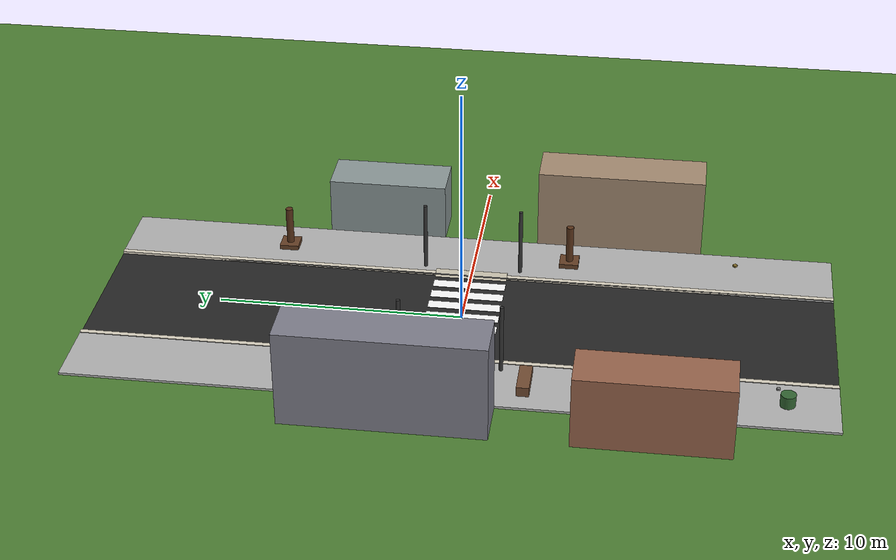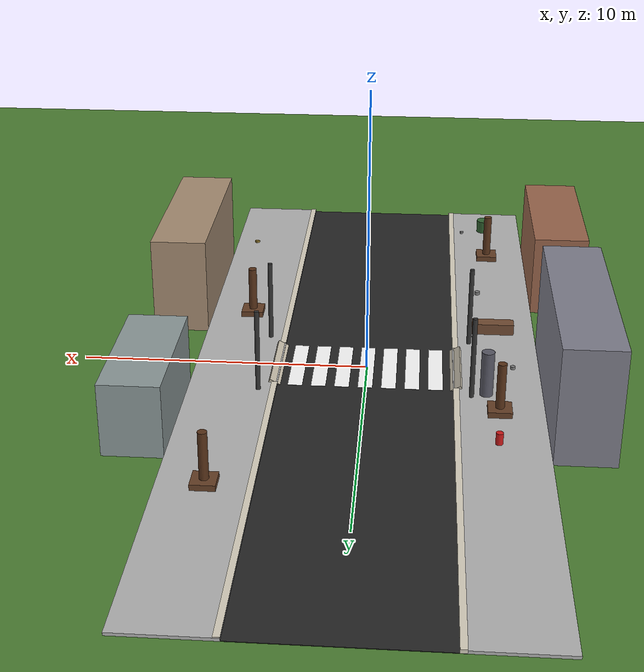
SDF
<?xml version="1.0" ?>
<sdf version="1.9">
  <world name="level1_basic">
    <physics name="1ms" type="ignore">
      <max_step_size>0.001</max_step_size>
      <real_time_factor>1.0</real_time_factor>
    </physics>
    <plugin filename="gz-sim-physics-system" name="gz::sim::systems::Physics"/>
    <plugin filename="gz-sim-scene-broadcaster-system" name="gz::sim::systems::SceneBroadcaster"/>
    <plugin filename="gz-sim-sensors-system" name="gz::sim::systems::Sensors">
      <render_engine>ogre2</render_engine>
    </plugin>
    <plugin filename="gz-sim-user-commands-system" name="gz::sim::systems::UserCommands"/>

    <light type="directional" name="sun">
      <cast_shadows>true</cast_shadows>
      <pose>0 0 10 0 0 0</pose>
      <diffuse>0.8 0.8 0.8 1</diffuse>
      <specular>0.2 0.2 0.2 1</specular>
      <attenuation><range>1000</range><constant>0.9</constant><linear>0.01</linear><quadratic>0.001</quadratic></attenuation>
      <direction>-0.5 0.1 -0.9</direction>
    </light>

    <!-- Level 1: 기본 인도 - 장애물 거의 없음, 평탄한 지형 -->

    <model name="ground_plane_visual">
      <static>true</static>
      <pose>0 0 -0.01 0 0 0</pose>
      <link name="link">
        <collision name="collision"><geometry><box><size>100 100 0.02</size></box></geometry></collision>
        <visual name="visual"><geometry><box><size>100 100 0.02</size></box></geometry>
          <material><ambient>0.3 0.5 0.2 1</ambient><diffuse>0.3 0.5 0.2 1</diffuse></material></visual>
      </link>
    </model>

    <model name="road">
      <static>true</static>
      <pose>0 0 0.01 0 0 0</pose>
      <link name="link">
        <collision name="collision"><geometry><box><size>6.0 30.0 0.02</size></box></geometry></collision>
        <visual name="visual"><geometry><box><size>6.0 30.0 0.02</size></box></geometry>
          <material><ambient>0.15 0.15 0.15 1</ambient><diffuse>0.15 0.15 0.15 1</diffuse></material></visual>
      </link>
    </model>

    <model name="sidewalk_left">
      <static>true</static>
      <pose>-4.5 0 0.05 0 0 0</pose>
      <link name="link">
        <collision name="collision"><geometry><box><size>3.0 30.0 0.1</size></box></geometry></collision>
        <visual name="visual"><geometry><box><size>3.0 30.0 0.1</size></box></geometry>
          <material><ambient>0.7 0.7 0.7 1</ambient><diffuse>0.7 0.7 0.7 1</diffuse></material></visual>
      </link>
    </model>

    <model name="sidewalk_right">
      <static>true</static>
      <pose>4.5 0 0.05 0 0 0</pose>
      <link name="link">
        <collision name="collision"><geometry><box><size>3.0 30.0 0.1</size></box></geometry></collision>
        <visual name="visual"><geometry><box><size>3.0 30.0 0.1</size></box></geometry>
          <material><ambient>0.7 0.7 0.7 1</ambient><diffuse>0.7 0.7 0.7 1</diffuse></material></visual>
      </link>
    </model>

    <model name="crosswalk_1">
      <static>true</static>
      <pose>-2.4 0 0.02 0 0 0</pose>
      <link name="link">
        <collision name="collision"><geometry><box><size>0.5 3 0.01</size></box></geometry></collision>
        <visual name="visual"><geometry><box><size>0.5 3 0.01</size></box></geometry>
          <material><ambient>1 1 1 1</ambient><diffuse>1 1 1 1</diffuse></material></visual>
      </link>
    </model>

    <model name="crosswalk_2">
      <static>true</static>
      <pose>-1.6 0 0.02 0 0 0</pose>
      <link name="link">
        <collision name="collision"><geometry><box><size>0.5 3 0.01</size></box></geometry></collision>
        <visual name="visual"><geometry><box><size>0.5 3 0.01</size></box></geometry>
          <material><ambient>1 1 1 1</ambient><diffuse>1 1 1 1</diffuse></material></visual>
      </link>
    </model>

    <model name="crosswalk_3">
      <static>true</static>
      <pose>-0.8 0 0.02 0 0 0</pose>
      <link name="link">
        <collision name="collision"><geometry><box><size>0.5 3 0.01</size></box></geometry></collision>
        <visual name="visual"><geometry><box><size>0.5 3 0.01</size></box></geometry>
          <material><ambient>1 1 1 1</ambient><diffuse>1 1 1 1</diffuse></material></visual>
      </link>
    </model>

    <model name="crosswalk_4">
      <static>true</static>
      <pose>0.0 0 0.02 0 0 0</pose>
      <link name="link">
        <collision name="collision"><geometry><box><size>0.5 3 0.01</size></box></geometry></collision>
        <visual name="visual"><geometry><box><size>0.5 3 0.01</size></box></geometry>
          <material><ambient>1 1 1 1</ambient><diffuse>1 1 1 1</diffuse></material></visual>
      </link>
    </model>

    <model name="crosswalk_5">
      <static>true</static>
      <pose>0.8 0 0.02 0 0 0</pose>
      <link name="link">
        <collision name="collision"><geometry><box><size>0.5 3 0.01</size></box></geometry></collision>
        <visual name="visual"><geometry><box><size>0.5 3 0.01</size></box></geometry>
          <material><ambient>1 1 1 1</ambient><diffuse>1 1 1 1</diffuse></material></visual>
      </link>
    </model>

    <model name="crosswalk_6">
      <static>true</static>
      <pose>1.6 0 0.02 0 0 0</pose>
      <link name="link">
        <collision name="collision"><geometry><box><size>0.5 3 0.01</size></box></geometry></collision>
        <visual name="visual"><geometry><box><size>0.5 3 0.01</size></box></geometry>
          <material><ambient>1 1 1 1</ambient><diffuse>1 1 1 1</diffuse></material></visual>
      </link>
    </model>

    <model name="crosswalk_7">
      <static>true</static>
      <pose>2.4 0 0.02 0 0 0</pose>
      <link name="link">
        <collision name="collision"><geometry><box><size>0.5 3 0.01</size></box></geometry></collision>
        <visual name="visual"><geometry><box><size>0.5 3 0.01</size></box></geometry>
          <material><ambient>1 1 1 1</ambient><diffuse>1 1 1 1</diffuse></material></visual>
      </link>
    </model>

    <model name="curb_left_south">
      <static>true</static>
      <pose>-3.1 -8.25 0.06999999999999999 0 0 0</pose>
      <link name="link">
        <collision name="collision"><geometry><box><size>0.2 13.5 0.12</size></box></geometry></collision>
        <visual name="visual"><geometry><box><size>0.2 13.5 0.12</size></box></geometry>
          <material><ambient>0.85 0.82 0.75 1</ambient><diffuse>0.85 0.82 0.75 1</diffuse></material></visual>
      </link>
    </model>

    <model name="curb_left_north">
      <static>true</static>
      <pose>-3.1 8.25 0.06999999999999999 0 0 0</pose>
      <link name="link">
        <collision name="collision"><geometry><box><size>0.2 13.5 0.12</size></box></geometry></collision>
        <visual name="visual"><geometry><box><size>0.2 13.5 0.12</size></box></geometry>
          <material><ambient>0.85 0.82 0.75 1</ambient><diffuse>0.85 0.82 0.75 1</diffuse></material></visual>
      </link>
    </model>

    <model name="curb_right_south">
      <static>true</static>
      <pose>3.1 -8.25 0.06999999999999999 0 0 0</pose>
      <link name="link">
        <collision name="collision"><geometry><box><size>0.2 13.5 0.12</size></box></geometry></collision>
        <visual name="visual"><geometry><box><size>0.2 13.5 0.12</size></box></geometry>
          <material><ambient>0.85 0.82 0.75 1</ambient><diffuse>0.85 0.82 0.75 1</diffuse></material></visual>
      </link>
    </model>

    <model name="curb_right_north">
      <static>true</static>
      <pose>3.1 8.25 0.06999999999999999 0 0 0</pose>
      <link name="link">
        <collision name="collision"><geometry><box><size>0.2 13.5 0.12</size></box></geometry></collision>
        <visual name="visual"><geometry><box><size>0.2 13.5 0.12</size></box></geometry>
          <material><ambient>0.85 0.82 0.75 1</ambient><diffuse>0.85 0.82 0.75 1</diffuse></material></visual>
      </link>
    </model>

    <model name="curb_ramp_left">
      <static>true</static>
      <pose>-3.1 0 0.06 0 0.5 0</pose>
      <link name="link">
        <collision name="collision"><geometry><box><size>0.4 3 0.12</size></box></geometry></collision>
        <visual name="visual"><geometry><box><size>0.4 3 0.12</size></box></geometry>
          <material><ambient>0.75 0.72 0.65 1</ambient><diffuse>0.75 0.72 0.65 1</diffuse></material></visual>
      </link>
    </model>

    <model name="curb_ramp_right">
      <static>true</static>
      <pose>3.1 0 0.06 0 -0.5 0</pose>
      <link name="link">
        <collision name="collision"><geometry><box><size>0.4 3 0.12</size></box></geometry></collision>
        <visual name="visual"><geometry><box><size>0.4 3 0.12</size></box></geometry>
          <material><ambient>0.75 0.72 0.65 1</ambient><diffuse>0.75 0.72 0.65 1</diffuse></material></visual>
      </link>
    </model>

    <model name="building_left_1">
      <static>true</static>
      <pose>-7.0 -8 1.5 0 0 0</pose>
      <link name="link">
        <collision name="collision"><geometry><box><size>2 6 3</size></box></geometry></collision>
        <visual name="visual"><geometry><box><size>2 6 3</size></box></geometry>
          <material><ambient>0.6 0.4 0.3 1</ambient><diffuse>0.6 0.4 0.3 1</diffuse></material></visual>
      </link>
    </model>

    <model name="building_left_2">
      <static>true</static>
      <pose>-7.0 2 2 0 0 0</pose>
      <link name="link">
        <collision name="collision"><geometry><box><size>2 8 4</size></box></geometry></collision>
        <visual name="visual"><geometry><box><size>2 8 4</size></box></geometry>
          <material><ambient>0.5 0.5 0.55 1</ambient><diffuse>0.5 0.5 0.55 1</diffuse></material></visual>
      </link>
    </model>

    <model name="building_right_1">
      <static>true</static>
      <pose>7.0 -6 1.75 0 0 0</pose>
      <link name="link">
        <collision name="collision"><geometry><box><size>2 7 3.5</size></box></geometry></collision>
        <visual name="visual"><geometry><box><size>2 7 3.5</size></box></geometry>
          <material><ambient>0.65 0.55 0.45 1</ambient><diffuse>0.65 0.55 0.45 1</diffuse></material></visual>
      </link>
    </model>

    <model name="building_right_2">
      <static>true</static>
      <pose>7.0 4 1.25 0 0 0</pose>
      <link name="link">
        <collision name="collision"><geometry><box><size>2 5 2.5</size></box></geometry></collision>
        <visual name="visual"><geometry><box><size>2 5 2.5</size></box></geometry>
          <material><ambient>0.55 0.6 0.6 1</ambient><diffuse>0.55 0.6 0.6 1</diffuse></material></visual>
      </link>
    </model>

    <model name="tree_1">
      <static>true</static>
      <pose>-4.5 -10 0.15 0 0 0</pose>
      <link name="link">
        <collision name="collision"><geometry><box><size>0.8 0.8 0.3</size></box></geometry></collision>
        <visual name="visual"><geometry><box><size>0.8 0.8 0.3</size></box></geometry>
          <material><ambient>0.4 0.25 0.15 1</ambient><diffuse>0.4 0.25 0.15 1</diffuse></material></visual>
      </link>
    </model>

    <model name="tree_1_trunk">
      <static>true</static>
      <pose>-4.5 -10 1.1 0 0 0</pose>
      <link name="link">
        <collision name="collision"><geometry><cylinder><radius>0.15</radius><length>1.6</length></cylinder></geometry></collision>
        <visual name="visual"><geometry><cylinder><radius>0.15</radius><length>1.6</length></cylinder></geometry>
          <material><ambient>0.35 0.2 0.1 1</ambient><diffuse>0.35 0.2 0.1 1</diffuse></material></visual>
      </link>
    </model>

    <model name="tree_2">
      <static>true</static>
      <pose>4.5 -4 0.15 0 0 0</pose>
      <link name="link">
        <collision name="collision"><geometry><box><size>0.8 0.8 0.3</size></box></geometry></collision>
        <visual name="visual"><geometry><box><size>0.8 0.8 0.3</size></box></geometry>
          <material><ambient>0.4 0.25 0.15 1</ambient><diffuse>0.4 0.25 0.15 1</diffuse></material></visual>
      </link>
    </model>

    <model name="tree_2_trunk">
      <static>true</static>
      <pose>4.5 -4 1.1 0 0 0</pose>
      <link name="link">
        <collision name="collision"><geometry><cylinder><radius>0.15</radius><length>1.6</length></cylinder></geometry></collision>
        <visual name="visual"><geometry><cylinder><radius>0.15</radius><length>1.6</length></cylinder></geometry>
          <material><ambient>0.35 0.2 0.1 1</ambient><diffuse>0.35 0.2 0.1 1</diffuse></material></visual>
      </link>
    </model>

    <model name="tree_3">
      <static>true</static>
      <pose>-4.5 3 0.15 0 0 0</pose>
      <link name="link">
        <collision name="collision"><geometry><box><size>0.8 0.8 0.3</size></box></geometry></collision>
        <visual name="visual"><geometry><box><size>0.8 0.8 0.3</size></box></geometry>
          <material><ambient>0.4 0.25 0.15 1</ambient><diffuse>0.4 0.25 0.15 1</diffuse></material></visual>
      </link>
    </model>

    <model name="tree_3_trunk">
      <static>true</static>
      <pose>-4.5 3 1.1 0 0 0</pose>
      <link name="link">
        <collision name="collision"><geometry><cylinder><radius>0.15</radius><length>1.6</length></cylinder></geometry></collision>
        <visual name="visual"><geometry><cylinder><radius>0.15</radius><length>1.6</length></cylinder></geometry>
          <material><ambient>0.35 0.2 0.1 1</ambient><diffuse>0.35 0.2 0.1 1</diffuse></material></visual>
      </link>
    </model>

    <model name="tree_4">
      <static>true</static>
      <pose>4.5 8 0.15 0 0 0</pose>
      <link name="link">
        <collision name="collision"><geometry><box><size>0.8 0.8 0.3</size></box></geometry></collision>
        <visual name="visual"><geometry><box><size>0.8 0.8 0.3</size></box></geometry>
          <material><ambient>0.4 0.25 0.15 1</ambient><diffuse>0.4 0.25 0.15 1</diffuse></material></visual>
      </link>
    </model>

    <model name="tree_4_trunk">
      <static>true</static>
      <pose>4.5 8 1.1 0 0 0</pose>
      <link name="link">
        <collision name="collision"><geometry><cylinder><radius>0.15</radius><length>1.6</length></cylinder></geometry></collision>
        <visual name="visual"><geometry><cylinder><radius>0.15</radius><length>1.6</length></cylinder></geometry>
          <material><ambient>0.35 0.2 0.1 1</ambient><diffuse>0.35 0.2 0.1 1</diffuse></material></visual>
      </link>
    </model>

    <model name="bench_1">
      <static>true</static>
      <pose>-4.5 -3 0.25 0 0 0</pose>
      <link name="link">
        <collision name="collision"><geometry><box><size>1.5 0.5 0.5</size></box></geometry></collision>
        <visual name="visual"><geometry><box><size>1.5 0.5 0.5</size></box></geometry>
          <material><ambient>0.45 0.3 0.2 1</ambient><diffuse>0.45 0.3 0.2 1</diffuse></material></visual>
      </link>
    </model>

    <model name="trash_bin_1">
      <static>true</static>
      <pose>-4.5 -13 0.3 0 0 0</pose>
      <link name="link">
        <collision name="collision"><geometry><cylinder><radius>0.3</radius><length>0.6</length></cylinder></geometry></collision>
        <visual name="visual"><geometry><cylinder><radius>0.3</radius><length>0.6</length></cylinder></geometry>
          <material><ambient>0.2 0.4 0.2 1</ambient><diffuse>0.2 0.4 0.2 1</diffuse></material></visual>
      </link>
    </model>

    <model name="hydrant_1">
      <static>true</static>
      <pose>-4.4 5 0.25 0 0 0</pose>
      <link name="link">
        <collision name="collision"><geometry><cylinder><radius>0.12</radius><length>0.5</length></cylinder></geometry></collision>
        <visual name="visual"><geometry><cylinder><radius>0.12</radius><length>0.5</length></cylinder></geometry>
          <material><ambient>0.8 0.1 0.1 1</ambient><diffuse>0.8 0.1 0.1 1</diffuse></material></visual>
      </link>
    </model>

    <model name="traffic_light_1">
      <static>true</static>
      <pose>-3.6 -2 1.5 0 0 0</pose>
      <link name="link">
        <collision name="collision"><geometry><cylinder><radius>0.08</radius><length>3</length></cylinder></geometry></collision>
        <visual name="visual"><geometry><cylinder><radius>0.08</radius><length>3</length></cylinder></geometry>
          <material><ambient>0.2 0.2 0.2 1</ambient><diffuse>0.2 0.2 0.2 1</diffuse></material></visual>
      </link>
    </model>

    <model name="traffic_light_2">
      <static>true</static>
      <pose>3.6 2 1.5 0 0 0</pose>
      <link name="link">
        <collision name="collision"><geometry><cylinder><radius>0.08</radius><length>3</length></cylinder></geometry></collision>
        <visual name="visual"><geometry><cylinder><radius>0.08</radius><length>3</length></cylinder></geometry>
          <material><ambient>0.2 0.2 0.2 1</ambient><diffuse>0.2 0.2 0.2 1</diffuse></material></visual>
      </link>
    </model>

    <model name="traffic_light_3">
      <static>true</static>
      <pose>-3.6 2 1.5 0 0 0</pose>
      <link name="link">
        <collision name="collision"><geometry><cylinder><radius>0.08</radius><length>3</length></cylinder></geometry></collision>
        <visual name="visual"><geometry><cylinder><radius>0.08</radius><length>3</length></cylinder></geometry>
          <material><ambient>0.2 0.2 0.2 1</ambient><diffuse>0.2 0.2 0.2 1</diffuse></material></visual>
      </link>
    </model>

    <model name="traffic_light_4">
      <static>true</static>
      <pose>3.6 -2 1.5 0 0 0</pose>
      <link name="link">
        <collision name="collision"><geometry><cylinder><radius>0.08</radius><length>3</length></cylinder></geometry></collision>
        <visual name="visual"><geometry><cylinder><radius>0.08</radius><length>3</length></cylinder></geometry>
          <material><ambient>0.2 0.2 0.2 1</ambient><diffuse>0.2 0.2 0.2 1</diffuse></material></visual>
      </link>
    </model>

    <model name="pedestrian_static_0">
      <static>true</static>
      <pose>-4.10 1.80 0.85 0 0 0</pose>
      <link name="link">
        <collision name="collision"><geometry><cylinder><radius>0.22</radius><length>1.7</length></cylinder></geometry></collision>
        <visual name="visual"><geometry><cylinder><radius>0.22</radius><length>1.7</length></cylinder></geometry>
          <material><ambient>0.35 0.35 0.4 1</ambient><diffuse>0.35 0.35 0.4 1</diffuse></material></visual>
      </link>
    </model>

    <model name="obstacle_0">
      <static>true</static>
      <pose>-5.09 -0.12 0.11 0 0 0</pose>
      <link name="link">
        <collision name="collision"><geometry><cylinder><radius>0.08623727661971846</radius><length>0.17247455323943692</length></cylinder></geometry></collision>
        <visual name="visual"><geometry><cylinder><radius>0.08623727661971846</radius><length>0.17247455323943692</length></cylinder></geometry>
          <material><ambient>0.5 0.5 0.5 1</ambient><diffuse>0.5 0.5 0.5 1</diffuse></material></visual>
      </link>
    </model>

    <model name="obstacle_1">
      <static>true</static>
      <pose>5.19 -10.97 0.10 0 0 0.68</pose>
      <link name="link">
        <collision name="collision"><geometry><box><size>0.15 0.15 0.15</size></box></geometry></collision>
        <visual name="visual"><geometry><box><size>0.15 0.15 0.15</size></box></geometry>
          <material><ambient>0.6 0.5 0.2 1</ambient><diffuse>0.6 0.5 0.2 1</diffuse></material></visual>
      </link>
    </model>

    <model name="obstacle_2">
      <static>true</static>
      <pose>-4.03 -6.31 0.12 0 0 0</pose>
      <link name="link">
        <collision name="collision"><geometry><cylinder><radius>0.09504565917491209</radius><length>0.19009131834982418</length></cylinder></geometry></collision>
        <visual name="visual"><geometry><cylinder><radius>0.09504565917491209</radius><length>0.19009131834982418</length></cylinder></geometry>
          <material><ambient>0.5 0.5 0.5 1</ambient><diffuse>0.5 0.5 0.5 1</diffuse></material></visual>
      </link>
    </model>

    <model name="obstacle_3">
      <static>true</static>
      <pose>-3.54 -12.67 0.10 0 0 0</pose>
      <link name="link">
        <collision name="collision"><geometry><cylinder><radius>0.07563614652483652</radius><length>0.15127229304967305</length></cylinder></geometry></collision>
        <visual name="visual"><geometry><cylinder><radius>0.07563614652483652</radius><length>0.15127229304967305</length></cylinder></geometry>
          <material><ambient>0.5 0.5 0.5 1</ambient><diffuse>0.5 0.5 0.5 1</diffuse></material></visual>
      </link>
    </model>

  </world>
</sdf>
